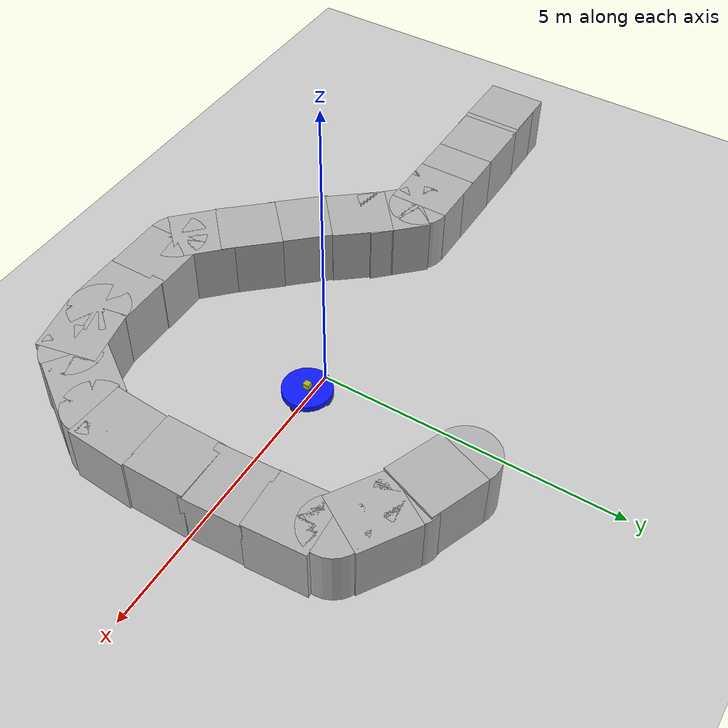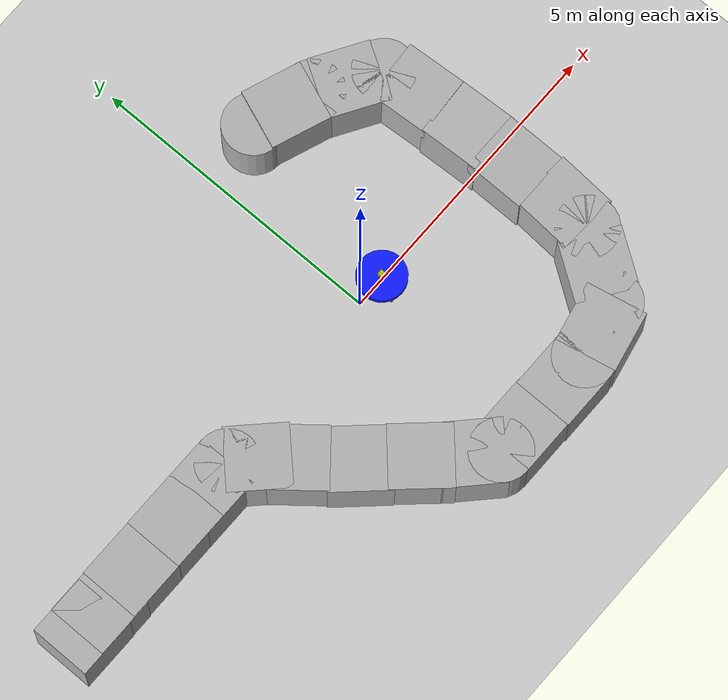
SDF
<sdf version='1.9'>
  <world name='sensor_world'>
    <physics name='1ms' type='ignored'>
      <max_step_size>0.001</max_step_size>
      <real_time_factor>1</real_time_factor>
      <real_time_update_rate>1000</real_time_update_rate>
    </physics>
    <plugin name='ignition::gazebo::systems::Physics' filename='ignition-gazebo-physics-system'/>
    <plugin name='ignition::gazebo::systems::UserCommands' filename='ignition-gazebo-user-commands-system'/>
    <plugin name='ignition::gazebo::systems::SceneBroadcaster' filename='ignition-gazebo-scene-broadcaster-system'/>
    <plugin name='ignition::gazebo::systems::Imu' filename='ignition-gazebo-imu-system'/>
    <plugin name='ignition::gazebo::systems::Sensors' filename='ignition-gazebo-sensors-system'>
      <render_engine>ogre2</render_engine>
    </plugin>
    <plugin name='ignition::gazebo::systems::Contact' filename='ignition-gazebo-contact-system'/>
    <gui fullscreen='false'>
      <plugin name='3D View' filename='MinimalScene'>
        <gz-gui>
          <title>3D View</title>
          <property type='bool' key='showTitleBar'>false</property>
          <property type='string' key='state'>docked</property>
        </gz-gui>
        <engine>ogre2</engine>
        <scene>scene</scene>
        <ambient_light>0.4 0.4 0.4</ambient_light>
        <background_color>0.8 0.8 0.8</background_color>
        <camera_pose>-6 0 6 0 0.5 0</camera_pose>
        <camera_clip>
          <near>0.25</near>
          <far>25000</far>
        </camera_clip>
      </plugin>
      <plugin name='Entity context menu' filename='EntityContextMenuPlugin'>
        <gz-gui>
          <property key='state' type='string'>floating</property>
          <property key='width' type='double'>5</property>
          <property key='height' type='double'>5</property>
          <property key='showTitleBar' type='bool'>false</property>
        </gz-gui>
      </plugin>
      <plugin name='Scene Manager' filename='GzSceneManager'>
        <gz-gui>
          <property key='resizable' type='bool'>false</property>
          <property key='width' type='double'>5</property>
          <property key='height' type='double'>5</property>
          <property key='state' type='string'>floating</property>
          <property key='showTitleBar' type='bool'>false</property>
        </gz-gui>
      </plugin>
      <plugin name='Interactive view control' filename='InteractiveViewControl'>
        <gz-gui>
          <property key='resizable' type='bool'>false</property>
          <property key='width' type='double'>5</property>
          <property key='height' type='double'>5</property>
          <property key='state' type='string'>floating</property>
          <property key='showTitleBar' type='bool'>false</property>
        </gz-gui>
      </plugin>
      <plugin name='Camera Tracking' filename='CameraTracking'>
        <gz-gui>
          <property key='resizable' type='bool'>false</property>
          <property key='width' type='double'>5</property>
          <property key='height' type='double'>5</property>
          <property key='state' type='string'>floating</property>
          <property key='showTitleBar' type='bool'>false</property>
        </gz-gui>
      </plugin>
      <plugin name='Marker manager' filename='MarkerManager'>
        <gz-gui>
          <property key='resizable' type='bool'>false</property>
          <property key='width' type='double'>5</property>
          <property key='height' type='double'>5</property>
          <property key='state' type='string'>floating</property>
          <property key='showTitleBar' type='bool'>false</property>
        </gz-gui>
      </plugin>
      <plugin name='Select Entities' filename='SelectEntities'>
        <gz-gui>
          <anchors target='Select entities'>
            <line own='right' target='right'/>
            <line own='top' target='top'/>
          </anchors>
          <property key='resizable' type='bool'>false</property>
          <property key='width' type='double'>5</property>
          <property key='height' type='double'>5</property>
          <property key='state' type='string'>floating</property>
          <property key='showTitleBar' type='bool'>false</property>
        </gz-gui>
      </plugin>
      <plugin name='Visualization Capabilities' filename='VisualizationCapabilities'>
        <gz-gui>
          <property key='resizable' type='bool'>false</property>
          <property key='width' type='double'>5</property>
          <property key='height' type='double'>5</property>
          <property key='state' type='string'>floating</property>
          <property key='showTitleBar' type='bool'>false</property>
        </gz-gui>
      </plugin>
      <plugin name='Spawn Entities' filename='Spawn'>
        <gz-gui>
          <anchors target='Select entities'>
            <line own='right' target='right'/>
            <line own='top' target='top'/>
          </anchors>
          <property key='resizable' type='bool'>false</property>
          <property key='width' type='double'>5</property>
          <property key='height' type='double'>5</property>
          <property key='state' type='string'>floating</property>
          <property key='showTitleBar' type='bool'>false</property>
        </gz-gui>
      </plugin>
      <plugin name='World control' filename='WorldControl'>
        <gz-gui>
          <title>World control</title>
          <property type='bool' key='showTitleBar'>false</property>
          <property type='bool' key='resizable'>false</property>
          <property type='double' key='height'>72</property>
          <property type='double' key='width'>121</property>
          <property type='double' key='z'>1</property>
          <property type='string' key='state'>floating</property>
          <anchors target='3D View'>
            <line own='left' target='left'/>
            <line own='bottom' target='bottom'/>
          </anchors>
        </gz-gui>
        <play_pause>true</play_pause>
        <step>true</step>
        <start_paused>true</start_paused>
        <use_event>true</use_event>
      </plugin>
      <plugin name='World stats' filename='WorldStats'>
        <gz-gui>
          <title>World stats</title>
          <property type='bool' key='showTitleBar'>false</property>
          <property type='bool' key='resizable'>false</property>
          <property type='double' key='height'>110</property>
          <property type='double' key='width'>290</property>
          <property type='double' key='z'>1</property>
          <property type='string' key='state'>floating</property>
          <anchors target='3D View'>
            <line own='right' target='right'/>
            <line own='bottom' target='bottom'/>
          </anchors>
        </gz-gui>
        <sim_time>true</sim_time>
        <real_time>true</real_time>
        <real_time_factor>true</real_time_factor>
        <iterations>true</iterations>
      </plugin>
      <plugin name='Shapes' filename='Shapes'>
        <gz-gui>
          <property key='resizable' type='bool'>false</property>
          <property key='x' type='double'>0</property>
          <property key='y' type='double'>0</property>
          <property key='width' type='double'>250</property>
          <property key='height' type='double'>50</property>
          <property key='state' type='string'>floating</property>
          <property key='showTitleBar' type='bool'>false</property>
          <property key='cardBackground' type='string'>#666666</property>
        </gz-gui>
      </plugin>
      <plugin name='Lights' filename='Lights'>
        <gz-gui>
          <property key='resizable' type='bool'>false</property>
          <property key='x' type='double'>250</property>
          <property key='y' type='double'>0</property>
          <property key='width' type='double'>150</property>
          <property key='height' type='double'>50</property>
          <property key='state' type='string'>floating</property>
          <property key='showTitleBar' type='bool'>false</property>
          <property key='cardBackground' type='string'>#666666</property>
        </gz-gui>
      </plugin>
      <plugin name='Transform control' filename='TransformControl'>
        <gz-gui>
          <property key='resizable' type='bool'>false</property>
          <property key='x' type='double'>0</property>
          <property key='y' type='double'>50</property>
          <property key='width' type='double'>250</property>
          <property key='height' type='double'>50</property>
          <property key='state' type='string'>floating</property>
          <property key='showTitleBar' type='bool'>false</property>
          <property key='cardBackground' type='string'>#777777</property>
        </gz-gui>
      </plugin>
      <plugin name='Screenshot' filename='Screenshot'>
        <gz-gui>
          <property key='resizable' type='bool'>false</property>
          <property key='x' type='double'>250</property>
          <property key='y' type='double'>50</property>
          <property key='width' type='double'>50</property>
          <property key='height' type='double'>50</property>
          <property key='state' type='string'>floating</property>
          <property key='showTitleBar' type='bool'>false</property>
          <property key='cardBackground' type='string'>#777777</property>
        </gz-gui>
      </plugin>
      <plugin name='VideoRecorder' filename='VideoRecorder'>
        <gz-gui>
          <property key='resizable' type='bool'>false</property>
          <property key='x' type='double'>300</property>
          <property key='y' type='double'>50</property>
          <property key='width' type='double'>50</property>
          <property key='height' type='double'>50</property>
          <property key='state' type='string'>floating</property>
          <property key='showTitleBar' type='bool'>false</property>
          <property key='cardBackground' type='string'>#777777</property>
        </gz-gui>
        <record_video>
          <use_sim_time>true</use_sim_time>
          <lockstep>false</lockstep>
          <bitrate>4000000</bitrate>
        </record_video>
      </plugin>
      <plugin name='Component inspector' filename='ComponentInspector'>
        <gz-gui>
          <property type='string' key='state'>docked_collapsed</property>
        </gz-gui>
      </plugin>
      <plugin name='Entity tree' filename='EntityTree'>
        <gz-gui>
          <property type='string' key='state'>docked_collapsed</property>
        </gz-gui>
      </plugin>
      <plugin name='View angle' filename='ViewAngle'>
        <gz-gui>
          <property type='string' key='state'>docked_collapsed</property>
        </gz-gui>
      </plugin>
      <plugin name='Key Publisher' filename='KeyPublisher'/>
    </gui>
    <plugin name='ignition::gazebo::systems::TriggeredPublisher' filename='ignition-gazebo-triggered-publisher-system'>
      <input type='ignition.msgs.Int32' topic='/keyboard/keypress'>
        <match field='data'>16777235</match>
      </input>
      <output type='ignition.msgs.Twist' topic='/cmd_vel'>linear: {x: 0.5}, angular: {z: 0.0}</output>
    </plugin>
    <plugin name='ignition::gazebo::systems::TriggeredPublisher' filename='ignition-gazebo-triggered-publisher-system'>
      <input type='ignition.msgs.Int32' topic='/keyboard/keypress'>
        <match field='data'>16777237</match>
      </input>
      <output type='ignition.msgs.Twist' topic='/cmd_vel'>linear: {x: -0.5}, angular: {z: 0.0}</output>
    </plugin>
    <plugin name='ignition::gazebo::systems::TriggeredPublisher' filename='ignition-gazebo-triggered-publisher-system'>
      <input type='ignition.msgs.Int32' topic='/keyboard/keypress'>
        <match field='data'>16777236</match>
      </input>
      <output type='ignition.msgs.Twist' topic='/cmd_vel'>linear: {x: 0.0}, angular: {z: -0.5}</output>
    </plugin>
    <plugin name='ignition::gazebo::systems::TriggeredPublisher' filename='ignition-gazebo-triggered-publisher-system'>
      <input type='ignition.msgs.Int32' topic='/keyboard/keypress'>
        <match field='data'>16777234</match>
      </input>
      <output type='ignition.msgs.Twist' topic='/cmd_vel'>linear: {x: 0.0}, angular: {z: 0.5}</output>
    </plugin>
    <plugin name='ignition::gazebo::systems::TriggeredPublisher' filename='ignition-gazebo-triggered-publisher-system'>
      <input type='ignition.msgs.Boolean' topic='/wall/touched'>
        <match>data: true</match>
      </input>
      <output type='ignition.msgs.Twist' topic='/cmd_vel'>linear: {x: 0.0}, angular: {z: 0.0}</output>
    </plugin>
    <gravity>0 0 -9.8</gravity>
    <magnetic_field>6e-06 2.3e-05 -4.2e-05</magnetic_field>
    <atmosphere type='adiabatic'/>
    <scene>
      <ambient>0.4 0.4 0.4 1</ambient>
      <background>0.7 0.7 0.7 1</background>
      <shadows>true</shadows>
    </scene>
    <model name='ground_plane'>
      <static>true</static>
      <link name='link'>
        <collision name='collision'>
          <geometry>
            <plane>
              <normal>0 0 1</normal>
              <size>1 1</size>
            </plane>
          </geometry>
          <surface>
            <friction>
              <ode/>
            </friction>
            <bounce/>
            <contact/>
          </surface>
        </collision>
        <visual name='visual'>
          <geometry>
            <plane>
              <normal>0 0 1</normal>
              <size>200 200</size>
            </plane>
          </geometry>
          <material>
            <ambient>0.8 0.8 0.8 1</ambient>
            <diffuse>0.8 0.8 0.8 1</diffuse>
            <specular>0.8 0.8 0.8 1</specular>
          </material>
        </visual>
        <pose>0 0 0 0 -0 0</pose>
        <inertial>
          <pose>0 0 0 0 -0 0</pose>
          <mass>1</mass>
          <inertia>
            <ixx>1</ixx>
            <ixy>0</ixy>
            <ixz>0</ixz>
            <iyy>1</iyy>
            <iyz>0</iyz>
            <izz>1</izz>
          </inertia>
        </inertial>
        <enable_wind>false</enable_wind>
      </link>
      <pose>0 0 0 0 -0 0</pose>
      <self_collide>false</self_collide>
    </model>
    <model name='vehicle_blue' canonical_link='chassis'>
      <pose>0 0 0 0 -0 0</pose>
      <frame name='lidar_frame' attached_to='lidar_housing'>
        <pose>0 0 0.2 0 0 0</pose>
      </frame>
      <link name='lidar_housing'>
        <pose>0.5 0 0.3 0 -0 0</pose>
        <inertial>
          <mass>0.10000000000000001</mass>
          <inertia>
            <ixx>0.0050000000000000001</ixx>
            <ixy>0</ixy>
            <ixz>0</ixz>
            <iyy>0.0050000000000000001</iyy>
            <iyz>0</iyz>
            <izz>0.0050000000000000001</izz>
          </inertia>
          <pose>0 0 0 0 -0 0</pose>
        </inertial>
        <visual name='visual'>
          <geometry>
            <box>
              <size>0.1 0.1 0.1</size>
            </box>
          </geometry>
          <material>
            <ambient>0.7 0.7 0.1 1</ambient>
            <diffuse>0.7 0.7 0.1 1</diffuse>
            <specular>0.7 0.7 0.1 1</specular>
          </material>
        </visual>
        <collision name='collision'>
          <geometry>
            <box>
              <size>0.1 0.1 0.1</size>
            </box>
          </geometry>
          <surface>
            <friction>
              <ode/>
            </friction>
            <bounce/>
            <contact/>
          </surface>
        </collision>
        <enable_wind>false</enable_wind>
      </link>
      <joint name='lidar_housing_joint' type='fixed'>
        <parent>chassis</parent>
        <child>lidar_housing</child>
        <pose>0 0 0 0 -0 0</pose>
      </joint>
      <link name='chassis'>
        <pose>0.5 0 0.2 0 -0 0</pose>
        <inertial>
          <mass>1.14395</mass>
          <inertia>
            <ixx>0.126164</ixx>
            <ixy>0</ixy>
            <ixz>0</ixz>
            <iyy>0.41651899999999997</iyy>
            <iyz>0</iyz>
            <izz>0.481014</izz>
          </inertia>
          <pose>0 0 0 0 -0 0</pose>
        </inertial>
        <visual name='visual'>
          <geometry>
            <cylinder>
              <radius>0.40000000000000002</radius>
              <length>0.10000000000000001</length>
            </cylinder>
          </geometry>
          <material>
            <ambient>0.05 0.1 1 1</ambient>
            <diffuse>0.05 0.1 1 1</diffuse>
            <specular>0.05 0.1 1 1</specular>
          </material>
        </visual>
        <collision name='collision'>
          <geometry>
            <cylinder>
              <radius>0.40000000000000002</radius>
              <length>0.10000000000000001</length>
            </cylinder>
          </geometry>
          <surface>
            <friction>
              <ode/>
            </friction>
            <bounce/>
            <contact/>
          </surface>
        </collision>
        <sensor name='gpu_lidar' type='gpu_lidar'>
          <pose>0 0 0.3 0 -0 0</pose>
          <topic>lidar</topic>
          <update_rate>10</update_rate>
          <enable_metrics>false</enable_metrics>
          <lidar>
            <scan>
              <horizontal>
                <samples>640</samples>
                <resolution>1</resolution>
                <min_angle>-1.3962600000000001</min_angle>
                <max_angle>1.3962600000000001</max_angle>
              </horizontal>
              <vertical>
                <samples>1</samples>
                <min_angle>0</min_angle>
                <max_angle>0</max_angle>
                <resolution>0.01</resolution>
              </vertical>
            </scan>
            <range>
              <min>0.080000000000000002</min>
              <max>10</max>
              <resolution>0.01</resolution>
            </range>
            <noise>
              <type>none</type>
              <mean>0</mean>
              <stddev>0</stddev>
            </noise>
            <visibility_mask>4294967295</visibility_mask>
          </lidar>
        </sensor>
        <enable_wind>false</enable_wind>
      </link>
      <link name='left_wheel'>
        <pose>0.415 0.3 0.115 -1.5707 0 0</pose>
        <inertial>
          <mass>2</mass>
          <inertia>
            <ixx>0.14583299999999999</ixx>
            <ixy>0</ixy>
            <ixz>0</ixz>
            <iyy>0.14583299999999999</iyy>
            <iyz>0</iyz>
            <izz>0.125</izz>
          </inertia>
          <pose>0 0 0 0 -0 0</pose>
        </inertial>
        <visual name='visual'>
          <geometry>
            <cylinder>
              <radius>0.115</radius>
              <length>0.10000000000000001</length>
            </cylinder>
          </geometry>
          <material>
            <ambient>0.1 0.1 0.1 1</ambient>
            <diffuse>0.1 0.1 0.1 1</diffuse>
            <specular>0.1 0.1 0.1 1</specular>
          </material>
        </visual>
        <collision name='collision'>
          <geometry>
            <cylinder>
              <radius>0.115</radius>
              <length>0.10000000000000001</length>
            </cylinder>
          </geometry>
          <surface>
            <friction>
              <ode/>
            </friction>
            <bounce/>
            <contact/>
          </surface>
        </collision>
        <enable_wind>false</enable_wind>
      </link>
      <link name='right_wheel'>
        <pose>0.415 -0.3 0.115 -1.5707 0 0</pose>
        <inertial>
          <mass>2</mass>
          <inertia>
            <ixx>0.14583299999999999</ixx>
            <ixy>0</ixy>
            <ixz>0</ixz>
            <iyy>0.14583299999999999</iyy>
            <iyz>0</iyz>
            <izz>0.125</izz>
          </inertia>
          <pose>0 0 0 0 -0 0</pose>
        </inertial>
        <visual name='visual'>
          <geometry>
            <cylinder>
              <radius>0.115</radius>
              <length>0.10000000000000001</length>
            </cylinder>
          </geometry>
          <material>
            <ambient>0.1 0.1 0.1 1</ambient>
            <diffuse>0.1 0.1 0.1 1</diffuse>
            <specular>0.1 0.1 0.1 1</specular>
          </material>
        </visual>
        <collision name='collision'>
          <geometry>
            <cylinder>
              <radius>0.115</radius>
              <length>0.10000000000000001</length>
            </cylinder>
          </geometry>
          <surface>
            <friction>
              <ode/>
            </friction>
            <bounce/>
            <contact/>
          </surface>
        </collision>
        <enable_wind>false</enable_wind>
      </link>
      <frame name='caster_frame' attached_to='chassis'>
        <pose>0.3 0 -0.095 0 0 0</pose>
      </frame>
      <link name='caster'>
        <pose>0.8 0 0.105 0 -0 0</pose>
        <inertial>
          <mass>2</mass>
          <inertia>
            <ixx>0.10000000000000001</ixx>
            <ixy>0</ixy>
            <ixz>0</ixz>
            <iyy>0.10000000000000001</iyy>
            <iyz>0</iyz>
            <izz>0.10000000000000001</izz>
          </inertia>
          <pose>0 0 0 0 -0 0</pose>
        </inertial>
        <visual name='visual'>
          <geometry>
            <sphere>
              <radius>0.10000000000000001</radius>
            </sphere>
          </geometry>
          <material>
            <ambient>0.2 0.2 0.2 1</ambient>
            <diffuse>0.2 0.2 0.2 1</diffuse>
            <specular>0.2 0.2 0.2 1</specular>
          </material>
        </visual>
        <collision name='collision'>
          <geometry>
            <sphere>
              <radius>0.10000000000000001</radius>
            </sphere>
          </geometry>
          <surface>
            <friction>
              <ode/>
            </friction>
            <bounce/>
            <contact/>
          </surface>
        </collision>
        <enable_wind>false</enable_wind>
      </link>
      <joint name='left_wheel_joint' type='revolute'>
        <pose>0 -0 0 0 -0 0</pose>
        <parent>chassis</parent>
        <child>left_wheel</child>
        <axis>
          <xyz>0 9.6e-05 1</xyz>
          <limit>
            <lower>-1.7976900000000001e+308</lower>
            <upper>1.7976900000000001e+308</upper>
            <effort>inf</effort>
            <velocity>inf</velocity>
            <stiffness>100000000</stiffness>
            <dissipation>1</dissipation>
          </limit>
          <dynamics>
            <spring_reference>0</spring_reference>
            <spring_stiffness>0</spring_stiffness>
            <damping>0</damping>
            <friction>0</friction>
          </dynamics>
        </axis>
      </joint>
      <joint name='right_wheel_joint' type='revolute'>
        <pose>0 0 0 0 -0 0</pose>
        <parent>chassis</parent>
        <child>right_wheel</child>
        <axis>
          <xyz>0 9.6e-05 1</xyz>
          <limit>
            <lower>-1.7976900000000001e+308</lower>
            <upper>1.7976900000000001e+308</upper>
            <effort>inf</effort>
            <velocity>inf</velocity>
            <stiffness>100000000</stiffness>
            <dissipation>1</dissipation>
          </limit>
          <dynamics>
            <spring_reference>0</spring_reference>
            <spring_stiffness>0</spring_stiffness>
            <damping>0</damping>
            <friction>0</friction>
          </dynamics>
        </axis>
      </joint>
      <joint name='caster_wheel' type='ball'>
        <parent>chassis</parent>
        <child>caster</child>
        <pose>0 0 0 0 -0 0</pose>
      </joint>
      <plugin name='ignition::gazebo::systems::DiffDrive' filename='ignition-gazebo-diff-drive-system'>
        <left_joint>left_wheel_joint</left_joint>
        <right_joint>right_wheel_joint</right_joint>
        <wheel_separation>1.2</wheel_separation>
        <wheel_radius>0.4</wheel_radius>
        <odom_publish_frequency>1</odom_publish_frequency>
        <topic>cmd_vel</topic>
      </plugin>
      <static>false</static>
      <self_collide>false</self_collide>
    </model>
    <model name='box'>
      <pose>2.98493 -0.491512 0.5 0 -0 0</pose>
      <link name='box_link'>
        <inertial>
          <inertia>
            <ixx>0.16666</ixx>
            <ixy>0</ixy>
            <ixz>0</ixz>
            <iyy>0.16666</iyy>
            <iyz>0</iyz>
            <izz>0.16666</izz>
          </inertia>
          <mass>1</mass>
          <pose>0 0 0 0 -0 0</pose>
        </inertial>
        <collision name='box_collision'>
          <geometry>
            <box>
              <size>1 1 1</size>
            </box>
          </geometry>
          <surface>
            <friction>
              <ode/>
            </friction>
            <bounce/>
            <contact/>
          </surface>
        </collision>
        <visual name='box_visual'>
          <geometry>
            <box>
              <size>1 1 1</size>
            </box>
          </geometry>
          <material>
            <ambient>0.3 0.3 0.3 1</ambient>
            <diffuse>0.7 0.7 0.7 1</diffuse>
            <specular>1 1 1 1</specular>
          </material>
        </visual>
        <pose>0 0 0 0 -0 0</pose>
        <enable_wind>false</enable_wind>
      </link>
      <static>false</static>
      <self_collide>false</self_collide>
    </model>
    <model name='cylinder'>
      <pose>0.872032 2.86652 0.5 0 -0 0</pose>
      <link name='cylinder_link'>
        <inertial>
          <inertia>
            <ixx>0.14580000000000001</ixx>
            <ixy>0</ixy>
            <ixz>0</ixz>
            <iyy>0.14580000000000001</iyy>
            <iyz>0</iyz>
            <izz>0.125</izz>
          </inertia>
          <mass>1</mass>
          <pose>0 0 0 0 -0 0</pose>
        </inertial>
        <collision name='cylinder_collision'>
          <geometry>
            <cylinder>
              <radius>0.5</radius>
              <length>1</length>
            </cylinder>
          </geometry>
          <surface>
            <friction>
              <ode/>
            </friction>
            <bounce/>
            <contact/>
          </surface>
        </collision>
        <visual name='cylinder_visual'>
          <geometry>
            <cylinder>
              <radius>0.5</radius>
              <length>1</length>
            </cylinder>
          </geometry>
          <material>
            <ambient>0.3 0.3 0.3 1</ambient>
            <diffuse>0.7 0.7 0.7 1</diffuse>
            <specular>1 1 1 1</specular>
          </material>
        </visual>
        <pose>0 0 0 0 -0 0</pose>
        <enable_wind>false</enable_wind>
      </link>
      <static>false</static>
      <self_collide>false</self_collide>
    </model>
    <model name='box_0'>
      <pose>1.41442 2.68313 0.541679 -0.000288 -0.004417 -0.362197</pose>
      <link name='box_link'>
        <inertial>
          <inertia>
            <ixx>0.16666</ixx>
            <ixy>0</ixy>
            <ixz>0</ixz>
            <iyy>0.16666</iyy>
            <iyz>0</iyz>
            <izz>0.16666</izz>
          </inertia>
          <mass>1</mass>
          <pose>0 0 0 0 -0 0</pose>
        </inertial>
        <collision name='box_collision'>
          <geometry>
            <box>
              <size>1 1 1</size>
            </box>
          </geometry>
          <surface>
            <friction>
              <ode/>
            </friction>
            <bounce/>
            <contact/>
          </surface>
        </collision>
        <visual name='box_visual'>
          <geometry>
            <box>
              <size>1 1 1</size>
            </box>
          </geometry>
          <material>
            <ambient>0.3 0.3 0.3 1</ambient>
            <diffuse>0.7 0.7 0.7 1</diffuse>
            <specular>1 1 1 1</specular>
          </material>
        </visual>
        <pose>0 0 0 0 -0 0</pose>
        <enable_wind>false</enable_wind>
      </link>
      <static>false</static>
      <self_collide>false</self_collide>
    </model>
    <model name='box_1'>
      <pose>2.95722 0.410325 0.488158 0.0027 0.037143 0.052375</pose>
      <link name='box_link'>
        <inertial>
          <inertia>
            <ixx>0.16666</ixx>
            <ixy>0</ixy>
            <ixz>0</ixz>
            <iyy>0.16666</iyy>
            <iyz>0</iyz>
            <izz>0.16666</izz>
          </inertia>
          <mass>1</mass>
          <pose>0 0 0 0 -0 0</pose>
        </inertial>
        <collision name='box_collision'>
          <geometry>
            <box>
              <size>1 1 1</size>
            </box>
          </geometry>
          <surface>
            <friction>
              <ode/>
            </friction>
            <bounce/>
            <contact/>
          </surface>
        </collision>
        <visual name='box_visual'>
          <geometry>
            <box>
              <size>1 1 1</size>
            </box>
          </geometry>
          <material>
            <ambient>0.3 0.3 0.3 1</ambient>
            <diffuse>0.7 0.7 0.7 1</diffuse>
            <specular>1 1 1 1</specular>
          </material>
        </visual>
        <pose>0 0 0 0 -0 0</pose>
        <enable_wind>false</enable_wind>
      </link>
      <static>false</static>
      <self_collide>false</self_collide>
    </model>
    <model name='box_2'>
      <pose>2.90621 1.37217 0.5 0 -0 0.068583</pose>
      <link name='box_link'>
        <inertial>
          <inertia>
            <ixx>0.16666</ixx>
            <ixy>0</ixy>
            <ixz>0</ixz>
            <iyy>0.16666</iyy>
            <iyz>0</iyz>
            <izz>0.16666</izz>
          </inertia>
          <mass>1</mass>
          <pose>0 0 0 0 -0 0</pose>
        </inertial>
        <collision name='box_collision'>
          <geometry>
            <box>
              <size>1 1 1</size>
            </box>
          </geometry>
          <surface>
            <friction>
              <ode/>
            </friction>
            <bounce/>
            <contact/>
          </surface>
        </collision>
        <visual name='box_visual'>
          <geometry>
            <box>
              <size>1 1 1</size>
            </box>
          </geometry>
          <material>
            <ambient>0.3 0.3 0.3 1</ambient>
            <diffuse>0.7 0.7 0.7 1</diffuse>
            <specular>1 1 1 1</specular>
          </material>
        </visual>
        <pose>0 0 0 0 -0 0</pose>
        <enable_wind>false</enable_wind>
      </link>
      <static>false</static>
      <self_collide>false</self_collide>
    </model>
    <model name='box_3'>
      <pose>2.57185 -2.46683 0.5 0 0 -0.59622</pose>
      <link name='box_link'>
        <inertial>
          <inertia>
            <ixx>0.16666</ixx>
            <ixy>0</ixy>
            <ixz>0</ixz>
            <iyy>0.16666</iyy>
            <iyz>0</iyz>
            <izz>0.16666</izz>
          </inertia>
          <mass>1</mass>
          <pose>0 0 0 0 -0 0</pose>
        </inertial>
        <collision name='box_collision'>
          <geometry>
            <box>
              <size>1 1 1</size>
            </box>
          </geometry>
          <surface>
            <friction>
              <ode/>
            </friction>
            <bounce/>
            <contact/>
          </surface>
        </collision>
        <visual name='box_visual'>
          <geometry>
            <box>
              <size>1 1 1</size>
            </box>
          </geometry>
          <material>
            <ambient>0.3 0.3 0.3 1</ambient>
            <diffuse>0.7 0.7 0.7 1</diffuse>
            <specular>1 1 1 1</specular>
          </material>
        </visual>
        <pose>0 0 0 0 -0 0</pose>
        <enable_wind>false</enable_wind>
      </link>
      <static>false</static>
      <self_collide>false</self_collide>
    </model>
    <model name='box_4'>
      <pose>2.3341 2.25005 0.5 0 0 -0.551886</pose>
      <link name='box_link'>
        <inertial>
          <inertia>
            <ixx>0.16666</ixx>
            <ixy>0</ixy>
            <ixz>0</ixz>
            <iyy>0.16666</iyy>
            <iyz>0</iyz>
            <izz>0.16666</izz>
          </inertia>
          <mass>1</mass>
          <pose>0 0 0 0 -0 0</pose>
        </inertial>
        <collision name='box_collision'>
          <geometry>
            <box>
              <size>1 1 1</size>
            </box>
          </geometry>
          <surface>
            <friction>
              <ode/>
            </friction>
            <bounce/>
            <contact/>
          </surface>
        </collision>
        <visual name='box_visual'>
          <geometry>
            <box>
              <size>1 1 1</size>
            </box>
          </geometry>
          <material>
            <ambient>0.3 0.3 0.3 1</ambient>
            <diffuse>0.7 0.7 0.7 1</diffuse>
            <specular>1 1 1 1</specular>
          </material>
        </visual>
        <pose>0 0 0 0 -0 0</pose>
        <enable_wind>false</enable_wind>
      </link>
      <static>false</static>
      <self_collide>false</self_collide>
    </model>
    <model name='box_5'>
      <pose>0.886297 -3.21598 0.5 0 -0 0</pose>
      <link name='box_link'>
        <inertial>
          <inertia>
            <ixx>0.16666</ixx>
            <ixy>0</ixy>
            <ixz>0</ixz>
            <iyy>0.16666</iyy>
            <iyz>0</iyz>
            <izz>0.16666</izz>
          </inertia>
          <mass>1</mass>
          <pose>0 0 0 0 -0 0</pose>
        </inertial>
        <collision name='box_collision'>
          <geometry>
            <box>
              <size>1 1 1</size>
            </box>
          </geometry>
          <surface>
            <friction>
              <ode/>
            </friction>
            <bounce/>
            <contact/>
          </surface>
        </collision>
        <visual name='box_visual'>
          <geometry>
            <box>
              <size>1 1 1</size>
            </box>
          </geometry>
          <material>
            <ambient>0.3 0.3 0.3 1</ambient>
            <diffuse>0.7 0.7 0.7 1</diffuse>
            <specular>1 1 1 1</specular>
          </material>
        </visual>
        <pose>0 0 0 0 -0 0</pose>
        <enable_wind>false</enable_wind>
      </link>
      <static>false</static>
      <self_collide>false</self_collide>
    </model>
    <model name='box_6'>
      <pose>-0.03955 -3.20397 0.5 0 -0 0</pose>
      <link name='box_link'>
        <inertial>
          <inertia>
            <ixx>0.16666</ixx>
            <ixy>0</ixy>
            <ixz>0</ixz>
            <iyy>0.16666</iyy>
            <iyz>0</iyz>
            <izz>0.16666</izz>
          </inertia>
          <mass>1</mass>
          <pose>0 0 0 0 -0 0</pose>
        </inertial>
        <collision name='box_collision'>
          <geometry>
            <box>
              <size>1 1 1</size>
            </box>
          </geometry>
          <surface>
            <friction>
              <ode/>
            </friction>
            <bounce/>
            <contact/>
          </surface>
        </collision>
        <visual name='box_visual'>
          <geometry>
            <box>
              <size>1 1 1</size>
            </box>
          </geometry>
          <material>
            <ambient>0.3 0.3 0.3 1</ambient>
            <diffuse>0.7 0.7 0.7 1</diffuse>
            <specular>1 1 1 1</specular>
          </material>
        </visual>
        <pose>0 0 0 0 -0 0</pose>
        <enable_wind>false</enable_wind>
      </link>
      <static>false</static>
      <self_collide>false</self_collide>
    </model>
    <model name='box_7'>
      <pose>-0.849773 -2.91078 0.5 0 0 -0.768425</pose>
      <link name='box_link'>
        <inertial>
          <inertia>
            <ixx>0.16666</ixx>
            <ixy>0</ixy>
            <ixz>0</ixz>
            <iyy>0.16666</iyy>
            <iyz>0</iyz>
            <izz>0.16666</izz>
          </inertia>
          <mass>1</mass>
          <pose>0 0 0 0 -0 0</pose>
        </inertial>
        <collision name='box_collision'>
          <geometry>
            <box>
              <size>1 1 1</size>
            </box>
          </geometry>
          <surface>
            <friction>
              <ode/>
            </friction>
            <bounce/>
            <contact/>
          </surface>
        </collision>
        <visual name='box_visual'>
          <geometry>
            <box>
              <size>1 1 1</size>
            </box>
          </geometry>
          <material>
            <ambient>0.3 0.3 0.3 1</ambient>
            <diffuse>0.7 0.7 0.7 1</diffuse>
            <specular>1 1 1 1</specular>
          </material>
        </visual>
        <pose>0 0 0 0 -0 0</pose>
        <enable_wind>false</enable_wind>
      </link>
      <static>false</static>
      <self_collide>false</self_collide>
    </model>
    <model name='box_8'>
      <pose>-1.38221 -2.36898 0.5 0 0 -0.833722</pose>
      <link name='box_link'>
        <inertial>
          <inertia>
            <ixx>0.16666</ixx>
            <ixy>0</ixy>
            <ixz>0</ixz>
            <iyy>0.16666</iyy>
            <iyz>0</iyz>
            <izz>0.16666</izz>
          </inertia>
          <mass>1</mass>
          <pose>0 0 0 0 -0 0</pose>
        </inertial>
        <collision name='box_collision'>
          <geometry>
            <box>
              <size>1 1 1</size>
            </box>
          </geometry>
          <surface>
            <friction>
              <ode/>
            </friction>
            <bounce/>
            <contact/>
          </surface>
        </collision>
        <visual name='box_visual'>
          <geometry>
            <box>
              <size>1 1 1</size>
            </box>
          </geometry>
          <material>
            <ambient>0.3 0.3 0.3 1</ambient>
            <diffuse>0.7 0.7 0.7 1</diffuse>
            <specular>1 1 1 1</specular>
          </material>
        </visual>
        <pose>0 0 0 0 -0 0</pose>
        <enable_wind>false</enable_wind>
      </link>
      <static>false</static>
      <self_collide>false</self_collide>
    </model>
    <model name='box_9'>
      <pose>-2.00305 -1.70676 0.5 0 0 -0.823602</pose>
      <link name='box_link'>
        <inertial>
          <inertia>
            <ixx>0.16666</ixx>
            <ixy>0</ixy>
            <ixz>0</ixz>
            <iyy>0.16666</iyy>
            <iyz>0</iyz>
            <izz>0.16666</izz>
          </inertia>
          <mass>1</mass>
          <pose>0 0 0 0 -0 0</pose>
        </inertial>
        <collision name='box_collision'>
          <geometry>
            <box>
              <size>1 1 1</size>
            </box>
          </geometry>
          <surface>
            <friction>
              <ode/>
            </friction>
            <bounce/>
            <contact/>
          </surface>
        </collision>
        <visual name='box_visual'>
          <geometry>
            <box>
              <size>1 1 1</size>
            </box>
          </geometry>
          <material>
            <ambient>0.3 0.3 0.3 1</ambient>
            <diffuse>0.7 0.7 0.7 1</diffuse>
            <specular>1 1 1 1</specular>
          </material>
        </visual>
        <pose>0 0 0 0 -0 0</pose>
        <enable_wind>false</enable_wind>
      </link>
      <static>false</static>
      <self_collide>false</self_collide>
    </model>
    <model name='box_10'>
      <pose>-4.46251 -0.260376 0.5 0 -0 0</pose>
      <link name='box_link'>
        <inertial>
          <inertia>
            <ixx>0.16666</ixx>
            <ixy>0</ixy>
            <ixz>0</ixz>
            <iyy>0.16666</iyy>
            <iyz>0</iyz>
            <izz>0.16666</izz>
          </inertia>
          <mass>1</mass>
          <pose>0 0 0 0 -0 0</pose>
        </inertial>
        <collision name='box_collision'>
          <geometry>
            <box>
              <size>1 1 1</size>
            </box>
          </geometry>
          <surface>
            <friction>
              <ode/>
            </friction>
            <bounce/>
            <contact/>
          </surface>
        </collision>
        <visual name='box_visual'>
          <geometry>
            <box>
              <size>1 1 1</size>
            </box>
          </geometry>
          <material>
            <ambient>0.3 0.3 0.3 1</ambient>
            <diffuse>0.7 0.7 0.7 1</diffuse>
            <specular>1 1 1 1</specular>
          </material>
        </visual>
        <pose>0 0 0 0 -0 0</pose>
        <enable_wind>false</enable_wind>
      </link>
      <static>false</static>
      <self_collide>false</self_collide>
    </model>
    <model name='box_11'>
      <pose>-6.55144 -0.286346 0.5 0 -0 0</pose>
      <link name='box_link'>
        <inertial>
          <inertia>
            <ixx>0.16666</ixx>
            <ixy>0</ixy>
            <ixz>0</ixz>
            <iyy>0.16666</iyy>
            <iyz>0</iyz>
            <izz>0.16666</izz>
          </inertia>
          <mass>1</mass>
          <pose>0 0 0 0 -0 0</pose>
        </inertial>
        <collision name='box_collision'>
          <geometry>
            <box>
              <size>1 1 1</size>
            </box>
          </geometry>
          <surface>
            <friction>
              <ode/>
            </friction>
            <bounce/>
            <contact/>
          </surface>
        </collision>
        <visual name='box_visual'>
          <geometry>
            <box>
              <size>1 1 1</size>
            </box>
          </geometry>
          <material>
            <ambient>0.3 0.3 0.3 1</ambient>
            <diffuse>0.7 0.7 0.7 1</diffuse>
            <specular>1 1 1 1</specular>
          </material>
        </visual>
        <pose>0 0 0 0 -0 0</pose>
        <enable_wind>false</enable_wind>
      </link>
      <static>false</static>
      <self_collide>false</self_collide>
    </model>
    <model name='box_12'>
      <pose>2.98185 -1.45495 0.5 0 0 -0.064551</pose>
      <link name='box_link'>
        <inertial>
          <inertia>
            <ixx>0.16666</ixx>
            <ixy>0</ixy>
            <ixz>0</ixz>
            <iyy>0.16666</iyy>
            <iyz>0</iyz>
            <izz>0.16666</izz>
          </inertia>
          <mass>1</mass>
          <pose>0 0 0 0 -0 0</pose>
        </inertial>
        <collision name='box_collision'>
          <geometry>
            <box>
              <size>1 1 1</size>
            </box>
          </geometry>
          <surface>
            <friction>
              <ode/>
            </friction>
            <bounce/>
            <contact/>
          </surface>
        </collision>
        <visual name='box_visual'>
          <geometry>
            <box>
              <size>1 1 1</size>
            </box>
          </geometry>
          <material>
            <ambient>0.3 0.3 0.3 1</ambient>
            <diffuse>0.7 0.7 0.7 1</diffuse>
            <specular>1 1 1 1</specular>
          </material>
        </visual>
        <pose>0 0 0 0 -0 0</pose>
        <enable_wind>false</enable_wind>
      </link>
      <static>false</static>
      <self_collide>false</self_collide>
    </model>
    <model name='cylinder_0'>
      <pose>2.80499 1.93962 0.5 0 -0 0</pose>
      <link name='cylinder_link'>
        <inertial>
          <inertia>
            <ixx>0.14580000000000001</ixx>
            <ixy>0</ixy>
            <ixz>0</ixz>
            <iyy>0.14580000000000001</iyy>
            <iyz>0</iyz>
            <izz>0.125</izz>
          </inertia>
          <mass>1</mass>
          <pose>0 0 0 0 -0 0</pose>
        </inertial>
        <collision name='cylinder_collision'>
          <geometry>
            <cylinder>
              <radius>0.5</radius>
              <length>1</length>
            </cylinder>
          </geometry>
          <surface>
            <friction>
              <ode/>
            </friction>
            <bounce/>
            <contact/>
          </surface>
        </collision>
        <visual name='cylinder_visual'>
          <geometry>
            <cylinder>
              <radius>0.5</radius>
              <length>1</length>
            </cylinder>
          </geometry>
          <material>
            <ambient>0.3 0.3 0.3 1</ambient>
            <diffuse>0.7 0.7 0.7 1</diffuse>
            <specular>1 1 1 1</specular>
          </material>
        </visual>
        <pose>0 0 0 0 -0 0</pose>
        <enable_wind>false</enable_wind>
      </link>
      <static>false</static>
      <self_collide>false</self_collide>
    </model>
    <model name='box_13'>
      <pose>1.86329 -3.11556 0.5 0 -0 0.207572</pose>
      <link name='box_link'>
        <inertial>
          <inertia>
            <ixx>0.16666</ixx>
            <ixy>0</ixy>
            <ixz>0</ixz>
            <iyy>0.16666</iyy>
            <iyz>0</iyz>
            <izz>0.16666</izz>
          </inertia>
          <mass>1</mass>
          <pose>0 0 0 0 -0 0</pose>
        </inertial>
        <collision name='box_collision'>
          <geometry>
            <box>
              <size>1 1 1</size>
            </box>
          </geometry>
          <surface>
            <friction>
              <ode/>
            </friction>
            <bounce/>
            <contact/>
          </surface>
        </collision>
        <visual name='box_visual'>
          <geometry>
            <box>
              <size>1 1 1</size>
            </box>
          </geometry>
          <material>
            <ambient>0.3 0.3 0.3 1</ambient>
            <diffuse>0.7 0.7 0.7 1</diffuse>
            <specular>1 1 1 1</specular>
          </material>
        </visual>
        <pose>0 0 0 0 -0 0</pose>
        <enable_wind>false</enable_wind>
      </link>
      <static>false</static>
      <self_collide>false</self_collide>
    </model>
    <model name='box_14'>
      <pose>-2.59555 -0.994221 0.5 0 0 -0.883053</pose>
      <link name='box_link'>
        <inertial>
          <inertia>
            <ixx>0.16666</ixx>
            <ixy>0</ixy>
            <ixz>0</ixz>
            <iyy>0.16666</iyy>
            <iyz>0</iyz>
            <izz>0.16666</izz>
          </inertia>
          <mass>1</mass>
          <pose>0 0 0 0 -0 0</pose>
        </inertial>
        <collision name='box_collision'>
          <geometry>
            <box>
              <size>1 1 1</size>
            </box>
          </geometry>
          <surface>
            <friction>
              <ode/>
            </friction>
            <bounce/>
            <contact/>
          </surface>
        </collision>
        <visual name='box_visual'>
          <geometry>
            <box>
              <size>1 1 1</size>
            </box>
          </geometry>
          <material>
            <ambient>0.3 0.3 0.3 1</ambient>
            <diffuse>0.7 0.7 0.7 1</diffuse>
            <specular>1 1 1 1</specular>
          </material>
        </visual>
        <pose>0 0 0 0 -0 0</pose>
        <enable_wind>false</enable_wind>
      </link>
      <static>false</static>
      <self_collide>false</self_collide>
    </model>
    <model name='box_15'>
      <pose>-3.79632 -0.260784 0.5 0 -0 0</pose>
      <link name='box_link'>
        <inertial>
          <inertia>
            <ixx>0.16666</ixx>
            <ixy>0</ixy>
            <ixz>0</ixz>
            <iyy>0.16666</iyy>
            <iyz>0</iyz>
            <izz>0.16666</izz>
          </inertia>
          <mass>1</mass>
          <pose>0 0 0 0 -0 0</pose>
        </inertial>
        <collision name='box_collision'>
          <geometry>
            <box>
              <size>1 1 1</size>
            </box>
          </geometry>
          <surface>
            <friction>
              <ode/>
            </friction>
            <bounce/>
            <contact/>
          </surface>
        </collision>
        <visual name='box_visual'>
          <geometry>
            <box>
              <size>1 1 1</size>
            </box>
          </geometry>
          <material>
            <ambient>0.3 0.3 0.3 1</ambient>
            <diffuse>0.7 0.7 0.7 1</diffuse>
            <specular>1 1 1 1</specular>
          </material>
        </visual>
        <pose>0 0 0 0 -0 0</pose>
        <enable_wind>false</enable_wind>
      </link>
      <static>false</static>
      <self_collide>false</self_collide>
    </model>
    <model name='box_16'>
      <pose>-6.1628 -0.277448 0.5 0 -0 0</pose>
      <link name='box_link'>
        <inertial>
          <inertia>
            <ixx>0.16666</ixx>
            <ixy>0</ixy>
            <ixz>0</ixz>
            <iyy>0.16666</iyy>
            <iyz>0</iyz>
            <izz>0.16666</izz>
          </inertia>
          <mass>1</mass>
          <pose>0 0 0 0 -0 0</pose>
        </inertial>
        <collision name='box_collision'>
          <geometry>
            <box>
              <size>1 1 1</size>
            </box>
          </geometry>
          <surface>
            <friction>
              <ode/>
            </friction>
            <bounce/>
            <contact/>
          </surface>
        </collision>
        <visual name='box_visual'>
          <geometry>
            <box>
              <size>1 1 1</size>
            </box>
          </geometry>
          <material>
            <ambient>0.3 0.3 0.3 1</ambient>
            <diffuse>0.7 0.7 0.7 1</diffuse>
            <specular>1 1 1 1</specular>
          </material>
        </visual>
        <pose>0 0 0 0 -0 0</pose>
        <enable_wind>false</enable_wind>
      </link>
      <static>false</static>
      <self_collide>false</self_collide>
    </model>
    <model name='box_17'>
      <pose>-5.44524 -0.265641 0.5 0 -0 0</pose>
      <link name='box_link'>
        <inertial>
          <inertia>
            <ixx>0.16666</ixx>
            <ixy>0</ixy>
            <ixz>0</ixz>
            <iyy>0.16666</iyy>
            <iyz>0</iyz>
            <izz>0.16666</izz>
          </inertia>
          <mass>1</mass>
          <pose>0 0 0 0 -0 0</pose>
        </inertial>
        <collision name='box_collision'>
          <geometry>
            <box>
              <size>1 1 1</size>
            </box>
          </geometry>
          <surface>
            <friction>
              <ode/>
            </friction>
            <bounce/>
            <contact/>
          </surface>
        </collision>
        <visual name='box_visual'>
          <geometry>
            <box>
              <size>1 1 1</size>
            </box>
          </geometry>
          <material>
            <ambient>0.3 0.3 0.3 1</ambient>
            <diffuse>0.7 0.7 0.7 1</diffuse>
            <specular>1 1 1 1</specular>
          </material>
        </visual>
        <pose>0 0 0 0 -0 0</pose>
        <enable_wind>false</enable_wind>
      </link>
      <static>false</static>
      <self_collide>false</self_collide>
    </model>
    <model name='box_18'>
      <pose>-2.96656 -0.560023 0.5 0 0 -0.786063</pose>
      <link name='box_link'>
        <inertial>
          <inertia>
            <ixx>0.16666</ixx>
            <ixy>0</ixy>
            <ixz>0</ixz>
            <iyy>0.16666</iyy>
            <iyz>0</iyz>
            <izz>0.16666</izz>
          </inertia>
          <mass>1</mass>
          <pose>0 0 0 0 -0 0</pose>
        </inertial>
        <collision name='box_collision'>
          <geometry>
            <box>
              <size>1 1 1</size>
            </box>
          </geometry>
          <surface>
            <friction>
              <ode/>
            </friction>
            <bounce/>
            <contact/>
          </surface>
        </collision>
        <visual name='box_visual'>
          <geometry>
            <box>
              <size>1 1 1</size>
            </box>
          </geometry>
          <material>
            <ambient>0.3 0.3 0.3 1</ambient>
            <diffuse>0.7 0.7 0.7 1</diffuse>
            <specular>1 1 1 1</specular>
          </material>
        </visual>
        <pose>0 0 0 0 -0 0</pose>
        <enable_wind>false</enable_wind>
      </link>
      <static>false</static>
      <self_collide>false</self_collide>
    </model>
    <model name='cylinder_1'>
      <pose>-3.3066 -0.261333 0.5 0 -0 0</pose>
      <link name='cylinder_link'>
        <inertial>
          <inertia>
            <ixx>0.14580000000000001</ixx>
            <ixy>0</ixy>
            <ixz>0</ixz>
            <iyy>0.14580000000000001</iyy>
            <iyz>0</iyz>
            <izz>0.125</izz>
          </inertia>
          <mass>1</mass>
          <pose>0 0 0 0 -0 0</pose>
        </inertial>
        <collision name='cylinder_collision'>
          <geometry>
            <cylinder>
              <radius>0.5</radius>
              <length>1</length>
            </cylinder>
          </geometry>
          <surface>
            <friction>
              <ode/>
            </friction>
            <bounce/>
            <contact/>
          </surface>
        </collision>
        <visual name='cylinder_visual'>
          <geometry>
            <cylinder>
              <radius>0.5</radius>
              <length>1</length>
            </cylinder>
          </geometry>
          <material>
            <ambient>0.3 0.3 0.3 1</ambient>
            <diffuse>0.7 0.7 0.7 1</diffuse>
            <specular>1 1 1 1</specular>
          </material>
        </visual>
        <pose>0 0 0 0 -0 0</pose>
        <enable_wind>false</enable_wind>
      </link>
      <static>false</static>
      <self_collide>false</self_collide>
    </model>
    <model name='cylinder_2'>
      <pose>-0.543804 -3.20343 0.5 0 -0 0</pose>
      <link name='cylinder_link'>
        <inertial>
          <inertia>
            <ixx>0.14580000000000001</ixx>
            <ixy>0</ixy>
            <ixz>0</ixz>
            <iyy>0.14580000000000001</iyy>
            <iyz>0</iyz>
            <izz>0.125</izz>
          </inertia>
          <mass>1</mass>
          <pose>0 0 0 0 -0 0</pose>
        </inertial>
        <collision name='cylinder_collision'>
          <geometry>
            <cylinder>
              <radius>0.5</radius>
              <length>1</length>
            </cylinder>
          </geometry>
          <surface>
            <friction>
              <ode/>
            </friction>
            <bounce/>
            <contact/>
          </surface>
        </collision>
        <visual name='cylinder_visual'>
          <geometry>
            <cylinder>
              <radius>0.5</radius>
              <length>1</length>
            </cylinder>
          </geometry>
          <material>
            <ambient>0.3 0.3 0.3 1</ambient>
            <diffuse>0.7 0.7 0.7 1</diffuse>
            <specular>1 1 1 1</specular>
          </material>
        </visual>
        <pose>0 0 0 0 -0 0</pose>
        <enable_wind>false</enable_wind>
      </link>
      <static>false</static>
      <self_collide>false</self_collide>
    </model>
    <model name='cylinder_3'>
      <pose>2.91387 -1.96827 0.5 0 -0 0</pose>
      <link name='cylinder_link'>
        <inertial>
          <inertia>
            <ixx>0.14580000000000001</ixx>
            <ixy>0</ixy>
            <ixz>0</ixz>
            <iyy>0.14580000000000001</iyy>
            <iyz>0</iyz>
            <izz>0.125</izz>
          </inertia>
          <mass>1</mass>
          <pose>0 0 0 0 -0 0</pose>
        </inertial>
        <collision name='cylinder_collision'>
          <geometry>
            <cylinder>
              <radius>0.5</radius>
              <length>1</length>
            </cylinder>
          </geometry>
          <surface>
            <friction>
              <ode/>
            </friction>
            <bounce/>
            <contact/>
          </surface>
        </collision>
        <visual name='cylinder_visual'>
          <geometry>
            <cylinder>
              <radius>0.5</radius>
              <length>1</length>
            </cylinder>
          </geometry>
          <material>
            <ambient>0.3 0.3 0.3 1</ambient>
            <diffuse>0.7 0.7 0.7 1</diffuse>
            <specular>1 1 1 1</specular>
          </material>
        </visual>
        <pose>0 0 0 0 -0 0</pose>
        <enable_wind>false</enable_wind>
      </link>
      <static>false</static>
      <self_collide>false</self_collide>
    </model>
    <model name='cylinder_4'>
      <pose>2.255 -2.97369 0.5 0 -0 0</pose>
      <link name='cylinder_link'>
        <inertial>
          <inertia>
            <ixx>0.14580000000000001</ixx>
            <ixy>0</ixy>
            <ixz>0</ixz>
            <iyy>0.14580000000000001</iyy>
            <iyz>0</iyz>
            <izz>0.125</izz>
          </inertia>
          <mass>1</mass>
          <pose>0 0 0 0 -0 0</pose>
        </inertial>
        <collision name='cylinder_collision'>
          <geometry>
            <cylinder>
              <radius>0.5</radius>
              <length>1</length>
            </cylinder>
          </geometry>
          <surface>
            <friction>
              <ode/>
            </friction>
            <bounce/>
            <contact/>
          </surface>
        </collision>
        <visual name='cylinder_visual'>
          <geometry>
            <cylinder>
              <radius>0.5</radius>
              <length>1</length>
            </cylinder>
          </geometry>
          <material>
            <ambient>0.3 0.3 0.3 1</ambient>
            <diffuse>0.7 0.7 0.7 1</diffuse>
            <specular>1 1 1 1</specular>
          </material>
        </visual>
        <pose>0 0 0 0 -0 0</pose>
        <enable_wind>false</enable_wind>
      </link>
      <static>false</static>
      <self_collide>false</self_collide>
    </model>
    <model name='cylinder_5'>
      <pose>1.35803 -3.2127 0.5 0 -0 0</pose>
      <link name='cylinder_link'>
        <inertial>
          <inertia>
            <ixx>0.14580000000000001</ixx>
            <ixy>0</ixy>
            <ixz>0</ixz>
            <iyy>0.14580000000000001</iyy>
            <iyz>0</iyz>
            <izz>0.125</izz>
          </inertia>
          <mass>1</mass>
          <pose>0 0 0 0 -0 0</pose>
        </inertial>
        <collision name='cylinder_collision'>
          <geometry>
            <cylinder>
              <radius>0.5</radius>
              <length>1</length>
            </cylinder>
          </geometry>
          <surface>
            <friction>
              <ode/>
            </friction>
            <bounce/>
            <contact/>
          </surface>
        </collision>
        <visual name='cylinder_visual'>
          <geometry>
            <cylinder>
              <radius>0.5</radius>
              <length>1</length>
            </cylinder>
          </geometry>
          <material>
            <ambient>0.3 0.3 0.3 1</ambient>
            <diffuse>0.7 0.7 0.7 1</diffuse>
            <specular>1 1 1 1</specular>
          </material>
        </visual>
        <pose>0 0 0 0 -0 0</pose>
        <enable_wind>false</enable_wind>
      </link>
      <static>false</static>
      <self_collide>false</self_collide>
    </model>
    <model name='cylinder_6'>
      <pose>1.85782 2.53628 0.5 0 -0 0</pose>
      <link name='cylinder_link'>
        <inertial>
          <inertia>
            <ixx>0.14580000000000001</ixx>
            <ixy>0</ixy>
            <ixz>0</ixz>
            <iyy>0.14580000000000001</iyy>
            <iyz>0</iyz>
            <izz>0.125</izz>
          </inertia>
          <mass>1</mass>
          <pose>0 0 0 0 -0 0</pose>
        </inertial>
        <collision name='cylinder_collision'>
          <geometry>
            <cylinder>
              <radius>0.5</radius>
              <length>1</length>
            </cylinder>
          </geometry>
          <surface>
            <friction>
              <ode/>
            </friction>
            <bounce/>
            <contact/>
          </surface>
        </collision>
        <visual name='cylinder_visual'>
          <geometry>
            <cylinder>
              <radius>0.5</radius>
              <length>1</length>
            </cylinder>
          </geometry>
          <material>
            <ambient>0.3 0.3 0.3 1</ambient>
            <diffuse>0.7 0.7 0.7 1</diffuse>
            <specular>1 1 1 1</specular>
          </material>
        </visual>
        <pose>0 0 0 0 -0 0</pose>
        <enable_wind>false</enable_wind>
      </link>
      <static>false</static>
      <self_collide>false</self_collide>
    </model>
    <light name='sun' type='directional'>
      <pose>0 0 10 0 -0 0</pose>
      <cast_shadows>true</cast_shadows>
      <intensity>1</intensity>
      <direction>-0.5 0.1 -0.9</direction>
      <diffuse>0.8 0.8 0.8 1</diffuse>
      <specular>0.2 0.2 0.2 1</specular>
      <attenuation>
        <range>1000</range>
        <linear>0.01</linear>
        <constant>0.90000000000000002</constant>
        <quadratic>0.001</quadratic>
      </attenuation>
      <spot>
        <inner_angle>0</inner_angle>
        <outer_angle>0</outer_angle>
        <falloff>0</falloff>
      </spot>
    </light>
    <!-- Moving Forward-->
    <plugin filename="ignition-gazebo-triggered-publisher-system"
            name="ignition::gazebo::systems::TriggeredPublisher">
        <input type="ignition.msgs.Int32" topic="/keyboard/keypress">
            <match field="data">16777235</match>
        </input>
        <output type="ignition.msgs.Twist" topic="/cmd_vel">
            linear: {x: 0.5}, angular: {z: 0.0}
        </output>
    </plugin>

    <!-- Moving Backward-->
    <plugin filename="ignition-gazebo-triggered-publisher-system"
            name="ignition::gazebo::systems::TriggeredPublisher">
        <input type="ignition.msgs.Int32" topic="/keyboard/keypress">
            <match field="data">16777237</match>
        </input>
        <output type="ignition.msgs.Twist" topic="/cmd_vel">
            linear: {x: -0.5}, angular: {z: 0.0}
        </output>
    </plugin>

    <!-- Rotating right-->
    <plugin filename="ignition-gazebo-triggered-publisher-system"
            name="ignition::gazebo::systems::TriggeredPublisher">
        <input type="ignition.msgs.Int32" topic="/keyboard/keypress">
            <match field="data">16777236</match>
        </input>
        <output type="ignition.msgs.Twist" topic="/cmd_vel">
            linear: {x: 0.0}, angular: {z: -0.5}
        </output>
    </plugin>

    <!--Rotating left-->
    <plugin filename="ignition-gazebo-triggered-publisher-system"
            name="ignition::gazebo::systems::TriggeredPublisher">
        <input type="ignition.msgs.Int32" topic="/keyboard/keypress">
            <match field="data">16777234</match>
        </input>
        <output type="ignition.msgs.Twist" topic="/cmd_vel">
            linear: {x: 0.0}, angular: {z: 0.5}
        </output>
    </plugin>

    <!--stop when hit the wall-->
    <plugin filename="ignition-gazebo-triggered-publisher-system"
            name="ignition::gazebo::systems::TriggeredPublisher">
        <input type="ignition.msgs.Boolean" topic="/wall/touched">
            <match>data: true</match>
        </input>
        <output type="ignition.msgs.Twist" topic="/cmd_vel">
            linear: {x: 0.0}, angular: {z: 0.0}
        </output>
    </plugin>
  </world>
</sdf>
